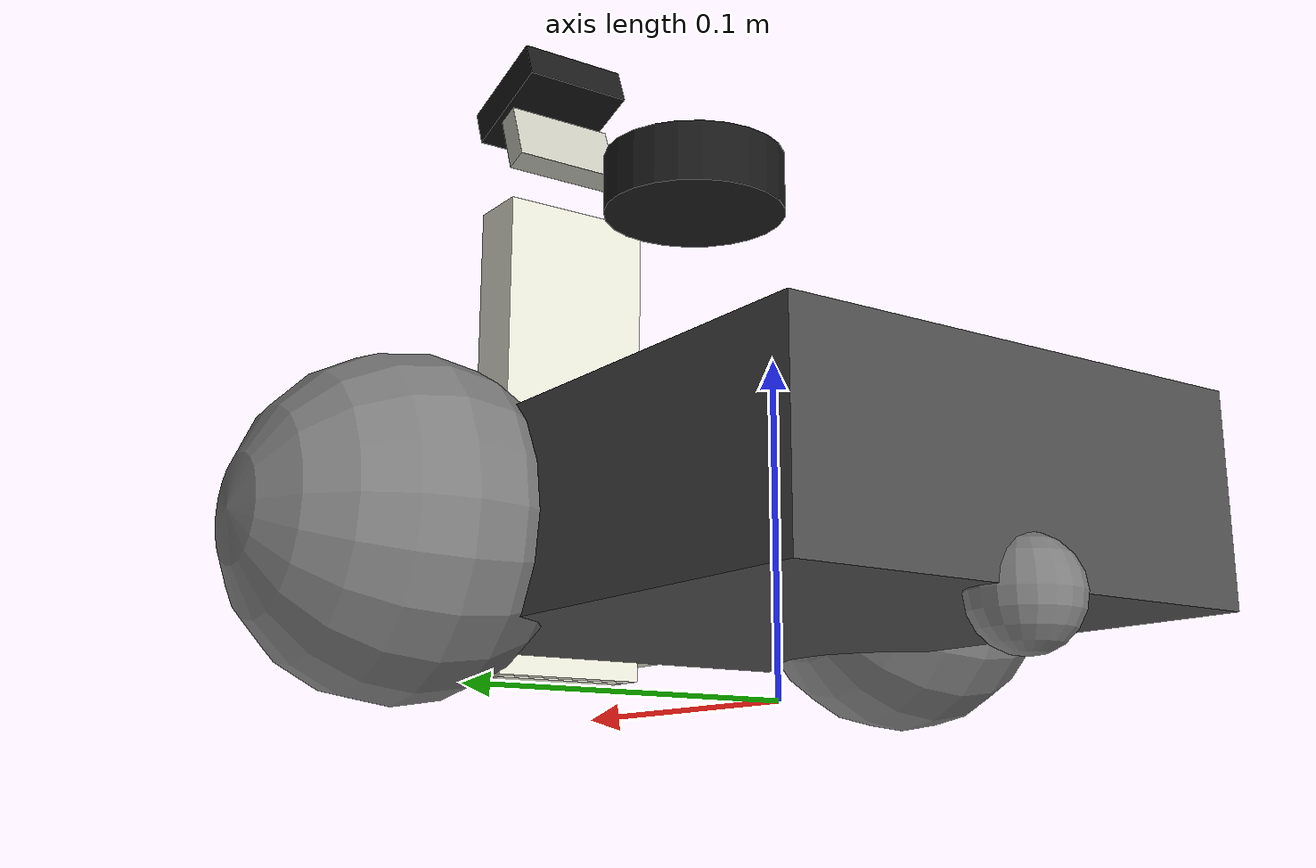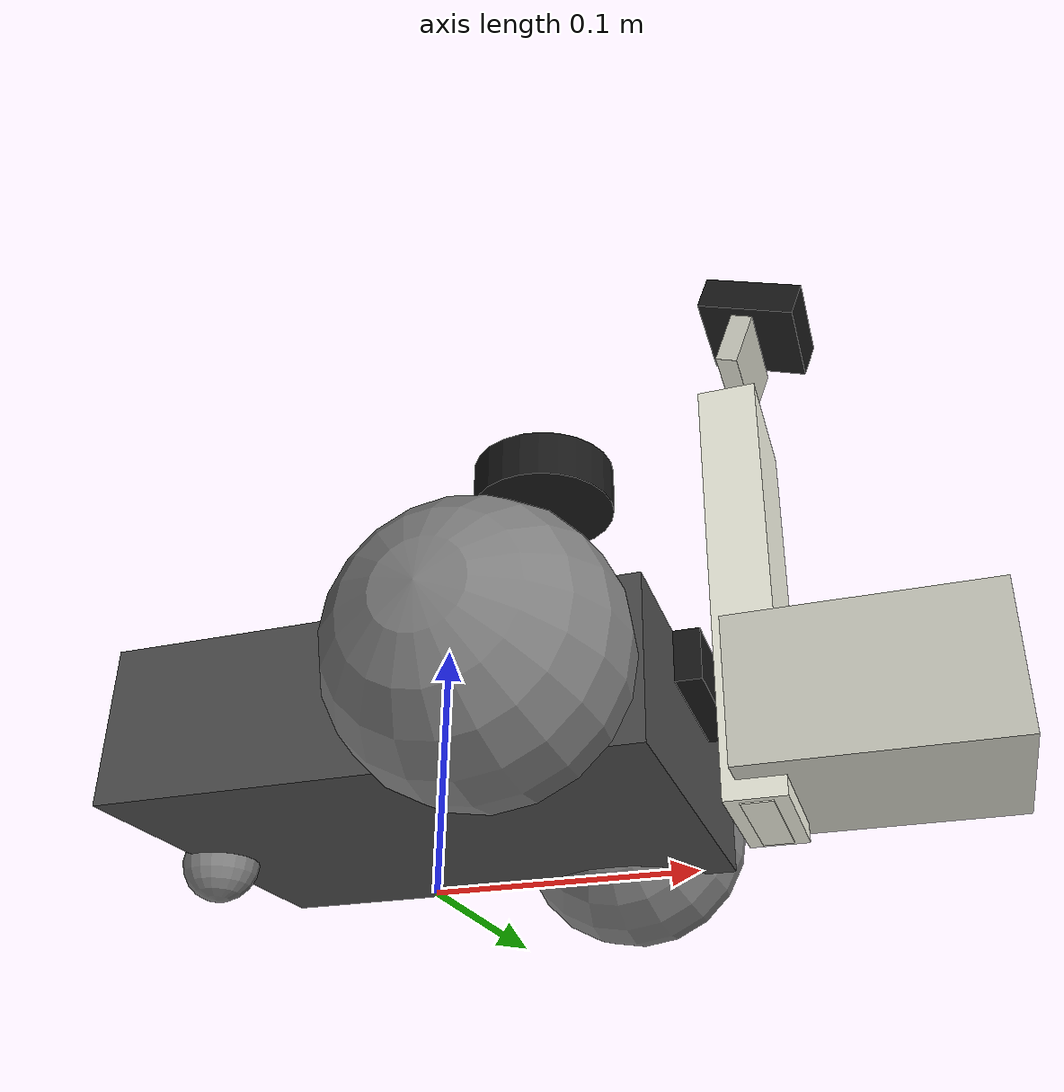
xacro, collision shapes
<?xml version="1.0"?>
<robot name="puzzlebot" xmlns:xacro="http://ros.org/wiki/xacro">

  <!-- Arguments -->
  <xacro:arg name="is_ignition" default="true"/>
  <xacro:arg name="is_sim" default="true"/>
  <!-- use_gz_control=false → robot SOLO-VISUAL (sin plugin ros2_control): para el
       gemelo-espejo, donde la pose se fija desde el robot real, no por físicas. -->
  <xacro:arg name="use_gz_control" default="true"/>

  <!-- LiDAR is mounted rear-facing on the real robot (cable toward back).
       Rotate 180° in real mode so the scan aligns with +X forward. -->
  <xacro:property name="lidar_yaw" value="${0.0 if '$(arg is_sim)' == 'true' else 3.141592653589793}"/>

  <!-- Include Gazebo plugins -->
  <xacro:include filename="$(find description)/urdf/puzzlebot_gazebo.xacro" />

  <!-- Include ros2_control (omitido en modo solo-visual / gemelo-espejo) -->
  <xacro:if value="$(arg use_gz_control)">
    <xacro:include filename="$(find description)/urdf/puzzlebot_ros2_control.xacro" />
  </xacro:if>

  <!-- ==================== PROPERTIES ==================== -->
  <xacro:property name="wheel_radius"    value="0.05"/>
  <xacro:property name="wheel_separation" value="0.19"/>
  <xacro:property name="base_mass"  value="1.0"/>
  <xacro:property name="wheel_mass" value="0.1"/>
  <xacro:property name="caster_mass" value="0.01"/>

  <!-- mm → m for lifter STL meshes -->
  <xacro:property name="s" value="0.001"/>

  <!-- Inertia macros -->
  <xacro:macro name="cylinder_inertia" params="m r h">
    <inertial>
      <mass value="${m}"/>
      <inertia ixx="${m*(3*r*r+h*h)/12}" ixy="0.0" ixz="0.0"
               iyy="${m*(3*r*r+h*h)/12}" iyz="0.0"
               izz="${m*r*r/2}"/>
    </inertial>
  </xacro:macro>

  <xacro:macro name="box_inertia" params="m x y z">
    <inertial>
      <mass value="${m}"/>
      <inertia ixx="${m*(y*y+z*z)/12}" ixy="0.0" ixz="0.0"
               iyy="${m*(x*x+z*z)/12}" iyz="0.0"
               izz="${m*(x*x+y*y)/12}"/>
    </inertial>
  </xacro:macro>

  <xacro:macro name="sphere_inertia" params="m r">
    <inertial>
      <mass value="${m}"/>
      <inertia ixx="${2*m*r*r/5}" ixy="0.0" ixz="0.0"
               iyy="${2*m*r*r/5}" iyz="0.0"
               izz="${2*m*r*r/5}"/>
    </inertial>
  </xacro:macro>

  <!-- ==================== ROBOT LINKS ==================== -->

  <link name="base_footprint"/>

  <link name="base_link">
    <xacro:box_inertia m="${base_mass}" x="0.2" y="0.15" z="0.06"/>
    <visual>
      <geometry>
        <mesh filename="package://description/meshes/Puzzlebot_Jetson_Lidar_Edition_Base.stl"/>
      </geometry>
      <material name="dark_grey">
        <color rgba="0.3 0.3 0.3 1.0"/>
      </material>
    </visual>
    <collision>
      <geometry>
        <box size="0.2 0.15 0.06"/>
      </geometry>
    </collision>
  </link>

  <link name="wheel_right_link">
    <xacro:cylinder_inertia m="${wheel_mass}" r="${wheel_radius}" h="0.02"/>
    <visual>
      <origin xyz="0 0 0" rpy="-1.5708 0 0"/>
      <geometry>
        <mesh filename="package://description/meshes/Puzzlebot_Wheel.stl"/>
      </geometry>
      <material name="grey">
        <color rgba="0.5 0.5 0.5 1.0"/>
      </material>
    </visual>
    <collision>
      <origin xyz="0 0 0" rpy="1.5708 0 0"/>
      <geometry>
        <sphere radius="${wheel_radius}"/>
      </geometry>
    </collision>
  </link>

  <link name="wheel_left_link">
    <xacro:cylinder_inertia m="${wheel_mass}" r="${wheel_radius}" h="0.02"/>
    <visual>
      <origin xyz="0 0 0" rpy="1.5708 0 0"/>
      <geometry>
        <mesh filename="package://description/meshes/Puzzlebot_Wheel.stl"/>
      </geometry>
      <material name="grey">
        <color rgba="0.5 0.5 0.5 1.0"/>
      </material>
    </visual>
    <collision>
      <origin xyz="0 0 0" rpy="1.5708 0 0"/>
      <geometry>
        <sphere radius="${wheel_radius}"/>
      </geometry>
    </collision>
  </link>

  <link name="caster_link">
    <xacro:sphere_inertia m="${caster_mass}" r="0.015"/>
    <visual>
      <origin xyz="0 0 -0.015" rpy="0 0 0"/>
      <geometry>
        <mesh filename="package://description/meshes/Puzzlebot_Caster_Wheel.stl"/>
      </geometry>
      <material name="grey">
        <color rgba="0.5 0.5 0.5 1.0"/>
      </material>
    </visual>
    <collision>
      <geometry>
        <sphere radius="0.015"/>
      </geometry>
    </collision>
  </link>

  <link name="lidar_link">
    <inertial>
      <mass value="0.05"/>
      <inertia ixx="1e-6" ixy="0" ixz="0" iyy="1e-6" iyz="0" izz="1e-6"/>
    </inertial>
    <visual>
      <geometry>
        <cylinder radius="0.03" length="0.02"/>
      </geometry>
      <material name="black">
        <color rgba="0.1 0.1 0.1 1.0"/>
      </material>
    </visual>
    <collision>
      <geometry>
        <cylinder radius="0.03" length="0.02"/>
      </geometry>
    </collision>
  </link>

  <link name="camera_link">
    <inertial>
      <mass value="0.02"/>
      <inertia ixx="1e-6" ixy="0" ixz="0" iyy="1e-6" iyz="0" izz="1e-6"/>
    </inertial>
    <visual>
      <geometry>
        <box size="0.02 0.06 0.02"/>
      </geometry>
      <material name="black">
        <color rgba="0.1 0.1 0.1 1.0"/>
      </material>
    </visual>
    <collision>
      <geometry>
        <box size="0.02 0.06 0.02"/>
      </geometry>
    </collision>
  </link>

  <link name="imu_link">
    <inertial>
      <mass value="0.01"/>
      <inertia ixx="1e-7" ixy="0" ixz="0" iyy="1e-7" iyz="0" izz="1e-7"/>
    </inertial>
  </link>

  <!-- ==================== LIFTER LINKS ==================== -->

  <!-- Outer mast / fork base (4-mast-1.stl)
       Physical size in world frame: 55 × 22.4 × 170 mm -->
  <link name="lifter_base_link">
    <visual>
      <origin xyz="-0.1125 -0.0112 0.1125" rpy="1.5708 3.14159 3.14159"/>
      <geometry>
        <mesh filename="package://description/meshes/lifter/outer_mast.stl"
              scale="${s} ${s} ${s}"/>
      </geometry>
      <material name="off_white">
        <color rgba="0.93 0.93 0.87 1.0"/>
      </material>
    </visual>
    <collision>
      <origin xyz="0 0 0" rpy="0 0 0"/>
      <geometry>
        <box size="0.055 0.0224 0.170"/>
      </geometry>
    </collision>
    <inertial>
      <origin xyz="0 0 0" rpy="0 0 0"/>
      <mass value="0.05"/>
      <inertia ixx="0.000123" ixy="0" ixz="0"
               iyy="0.000133" iyz="0" izz="0.0000147"/>
    </inertial>
  </link>

  <!-- Inner mast (Frantic Albar-Hillar (9).stl)
       Physical size in world frame: 49 × 11.6 × 171 mm -->
  <link name="mast_inner_link">
    <visual>
      <origin xyz="-0.0655 0.0058 -0.0050" rpy="1.5708 0 0"/>
      <geometry>
        <mesh filename="package://description/meshes/lifter/mast_inner.stl"
              scale="${s} ${s} ${s}"/>
      </geometry>
      <material name="off_white">
        <color rgba="0.93 0.93 0.87 1.0"/>
      </material>
    </visual>
    <collision>
      <origin xyz="0 0 0" rpy="0 0 0"/>
      <geometry>
        <box size="0.049 0.0116 0.171"/>
      </geometry>
    </collision>
    <inertial>
      <origin xyz="0 0 0" rpy="0 0 0"/>
      <mass value="0.03"/>
      <inertia ixx="0.0000608" ixy="0" ixz="0"
               iyy="0.0000665" iyz="0" izz="0.00000634"/>
    </inertial>
  </link>

  <!-- Carriage (8-carriage.stl)
       Physical size in world frame: 80 × 96.5 × 55.9 mm -->
  <link name="carriage_link">
    <visual>
      <origin xyz="-0.1125 -0.11343 -0.02793" rpy="0 0 0"/>
      <geometry>
        <mesh filename="package://description/meshes/lifter/carriage.stl"
              scale="${s} ${s} ${s}"/>
      </geometry>
      <material name="light_grey">
        <color rgba="0.80 0.80 0.75 1.0"/>
      </material>
    </visual>
    <collision>
      <origin xyz="0 0 0" rpy="0 0 0"/>
      <geometry>
        <box size="0.080 0.0965 0.0559"/>
      </geometry>
    </collision>
    <inertial>
      <origin xyz="0 0 0" rpy="0 0 0"/>
      <mass value="0.02"/>
      <inertia ixx="0.0000207" ixy="0" ixz="0"
               iyy="0.0000159" iyz="0" izz="0.0000262"/>
    </inertial>
  </link>

  <!-- Camera pan holder (camera_holder.stl) — rotates on top of inner mast -->
  <link name="cam_holder_link">
    <visual>
      <origin xyz="0.0285 -0.0055 0.0715" rpy="-1.5708 0 0"/>
      <geometry>
        <mesh filename="package://description/meshes/lifter/camera_holder.stl"
              scale="${s} ${s} ${s}"/>
      </geometry>
      <material name="light_grey">
        <color rgba="0.80 0.80 0.75 1.0"/>
      </material>
    </visual>
    <collision>
      <origin xyz="0 0 0.01125" rpy="0 0 0"/>
      <geometry>
        <box size="0.041 0.009 0.0225"/>
      </geometry>
    </collision>
    <inertial>
      <origin xyz="0 0 0.01125" rpy="0 0 0"/>
      <mass value="0.01"/>
      <inertia ixx="1e-6" ixy="0" ixz="0" iyy="1e-6" iyz="0" izz="1e-6"/>
    </inertial>
  </link>

  <!-- Mast camera (camera.stl) — fixed to the pan holder -->
  <link name="mast_camera_link">
    <visual>
      <origin xyz="-0.0005 0.0290 0.0005" rpy="-1.5708 0 3.14159"/>
      <geometry>
        <mesh filename="package://description/meshes/lifter/camera.stl"
              scale="${s} ${s} ${s}"/>
      </geometry>
      <material name="black">
        <color rgba="0.1 0.1 0.1 1.0"/>
      </material>
    </visual>
    <collision>
      <origin xyz="0 0 0" rpy="0 0 0"/>
      <geometry>
        <box size="0.041 0.041 0.014"/>
      </geometry>
    </collision>
    <inertial>
      <origin xyz="0 0 0" rpy="0 0 0"/>
      <mass value="0.01"/>
      <inertia ixx="1e-6" ixy="0" ixz="0" iyy="1e-6" iyz="0" izz="1e-6"/>
    </inertial>
  </link>

  <!-- ==================== ROBOT JOINTS ==================== -->

  <joint name="base_joint" type="fixed">
    <parent link="base_footprint"/>
    <child  link="base_link"/>
    <origin xyz="0.0 0.0 0.05" rpy="0.0 0.0 0.0"/>
  </joint>

  <joint name="wheel_right_joint" type="continuous">
    <parent link="base_link"/>
    <child  link="wheel_right_link"/>
    <origin xyz="0.052 -0.095 -0.0025" rpy="0.0 0.0 0.0"/>
    <axis xyz="0 1 0"/>
  </joint>

  <joint name="wheel_left_joint" type="continuous">
    <parent link="base_link"/>
    <child  link="wheel_left_link"/>
    <origin xyz="0.052 0.095 -0.0025" rpy="0.0 0.0 0.0"/>
    <axis xyz="0 1 0"/>
  </joint>

  <joint name="caster_joint" type="fixed">
    <parent link="base_link"/>
    <child  link="caster_link"/>
    <origin xyz="-0.095 0 -0.0307" rpy="0 0 0"/>
  </joint>

  <joint name="lidar_joint" type="fixed">
    <parent link="base_link"/>
    <child  link="lidar_link"/>
    <origin xyz="0.04 0.0 0.12" rpy="0.0 0.0 ${lidar_yaw}"/>
  </joint>

  <joint name="camera_joint" type="fixed">
    <parent link="base_link"/>
    <child  link="camera_link"/>
    <origin xyz="0.1 0.0 0.02" rpy="0.0 0.0 0.0"/>
  </joint>

  <joint name="imu_joint" type="fixed">
    <parent link="base_link"/>
    <child  link="imu_link"/>
    <origin xyz="0.0 0.0 0.04" rpy="0.0 0.0 0.0"/>
  </joint>

  <!-- ==================== LIFTER JOINTS ==================== -->

  <joint name="lifter_joint" type="fixed">
    <parent link="base_link"/>
    <child  link="lifter_base_link"/>
    <origin xyz="0.125 0 0.050" rpy="0 0 1.5708"/>
  </joint>

  <!-- Inner mast: slides up inside outer mast -->
  <joint name="mast_inner_joint" type="prismatic">
    <parent link="lifter_base_link"/>
    <child  link="mast_inner_link"/>
    <origin xyz="0 0 0" rpy="0 0 0"/>
    <axis xyz="0 0 1"/>
    <limit lower="0.0" upper="0.10" effort="100.0" velocity="0.10"/>
    <dynamics damping="10.0" friction="2.0"/>
  </joint>

  <!-- Carriage: slides up on inner mast -->
  <joint name="carriage_joint" type="prismatic">
    <parent link="mast_inner_link"/>
    <child  link="carriage_link"/>
    <origin xyz="0 -0.0420 -0.0498" rpy="0 0 0"/>
    <axis xyz="0 0 1"/>
    <limit lower="0.0" upper="0.10" effort="50.0" velocity="0.10"/>
    <dynamics damping="10.0" friction="2.0"/>
  </joint>

  <!-- Pan holder: revolute around X at top of inner mast -->
  <joint name="cam_holder_joint" type="fixed">
    <parent link="mast_inner_link"/>
    <child  link="cam_holder_link"/>
    <origin xyz="0 0 0.105" rpy="0.3491 0 0"/>  <!-- tilt camara 20deg hacia abajo (antes 45deg=0.7854) -->
  </joint>

  <!-- Camera: fixed to the pan holder, sits on top of bracket
       z=0.030: bracket top (0.0225) + half camera height (0.007) = 0.0295 ≈ 0.030m -->
  <joint name="mast_camera_joint" type="fixed">
    <parent link="cam_holder_link"/>
    <child  link="mast_camera_link"/>
    <origin xyz="0 0 0.033" rpy="0 0 0"/>
  </joint>

  <!-- ==================== MATERIALS ==================== -->
  <material name="dark_grey">
    <color rgba="0.3 0.3 0.3 1.0"/>
  </material>
  <material name="grey">
    <color rgba="0.5 0.5 0.5 1.0"/>
  </material>
  <material name="black">
    <color rgba="0.1 0.1 0.1 1.0"/>
  </material>
  <material name="off_white">
    <color rgba="0.93 0.93 0.87 1.0"/>
  </material>
  <material name="light_grey">
    <color rgba="0.80 0.80 0.75 1.0"/>
  </material>

</robot>
